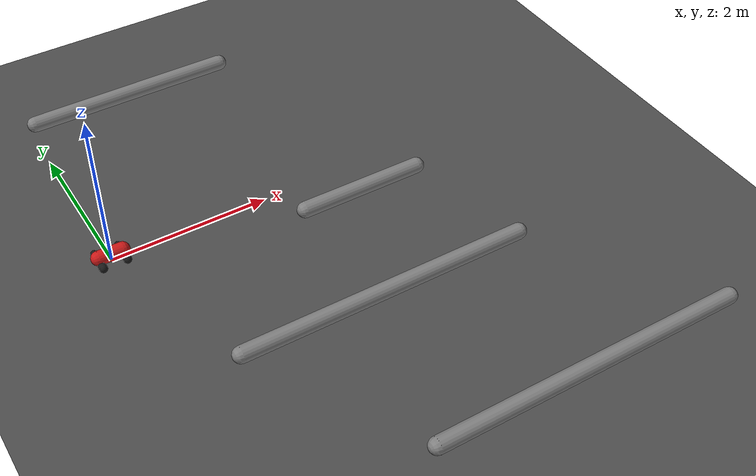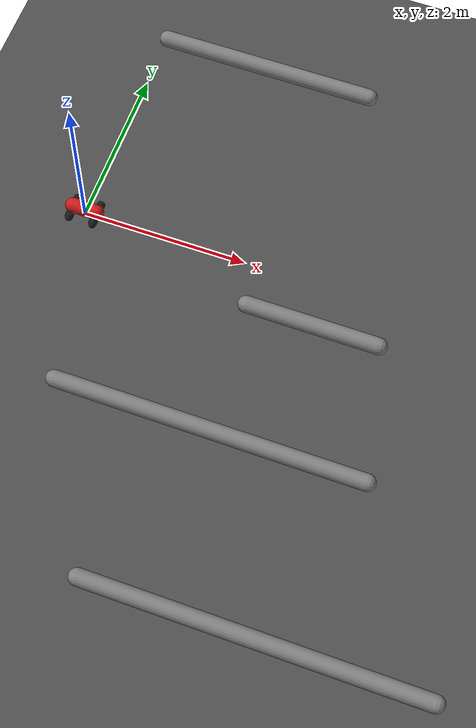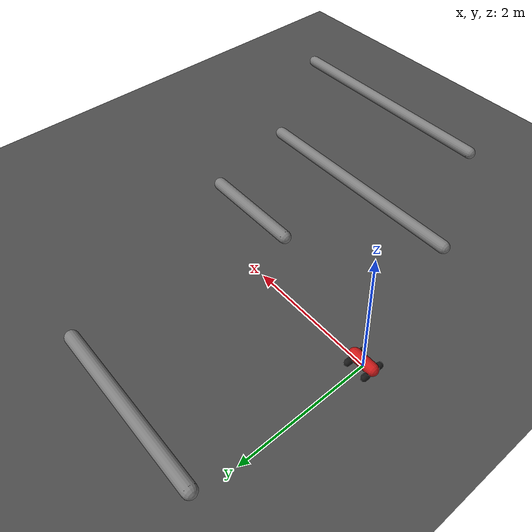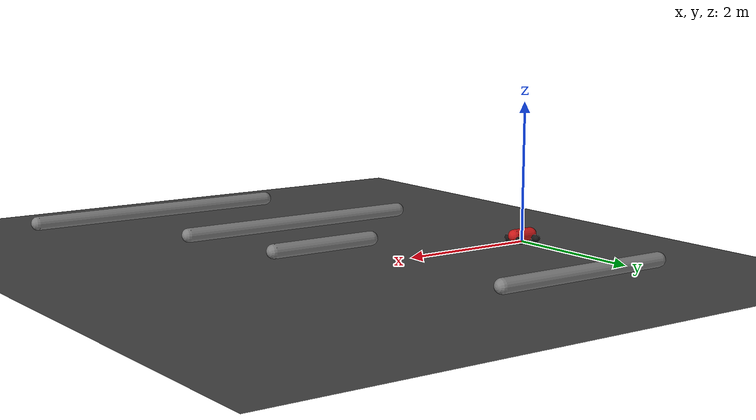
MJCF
<mujoco model="ackermann_car_scene">
  <compiler angle="radian"/>
  <option timestep="0.002" gravity="0 0 -9.81" iterations="4" cone="pyramidal"/>

  <default>
    <joint damping="0.05"/>
    <geom friction="2.0 0.1 0.1" contype="1" conaffinity="1"/>
  </default>

  <worldbody>
    <geom name="floor" type="plane" size="8.0 8.0 0.1" rgba="0.3 0.3 0.3 1"/>
    <geom name="wall_0" type="capsule" size="0.1" fromto="0.5646793996179851 -2.2043787683452045 0.2 4.183263741961067 -2.2043787683452045 0.2" rgba="0.5 0.5 0.5 1"/>
    <geom name="wall_1" type="capsule" size="0.1" fromto="0.05247292351894384 2.598510160219618 0.2 2.676200585490789 2.598510160219618 0.2" rgba="0.5 0.5 0.5 1"/>
    <geom name="wall_2" type="capsule" size="0.1" fromto="2.236451589626319 -0.6050963888545198 0.2 3.807320280931335 -0.6050963888545198 0.2" rgba="0.5 0.5 0.5 1"/>
    <geom name="wall_3" type="capsule" size="0.1" fromto="1.6812587490609485 -4.2246901526980185 0.2 5.544435487945755 -4.2246901526980185 0.2" rgba="0.5 0.5 0.5 1"/>

    <body name="chassis" pos="0 0 0.1">
      <freejoint name="chassis_free"/>
      <geom name="chassis_geom" type="capsule" size="0.09" fromto="-0.15 0 0 0.15 0 0" mass="3.0" rgba="0.8 0.1 0.1 1"/>

      <body name="wheel_fl" pos="0.1483 0.115 -0.05">
        <joint name="steer_fl" type="hinge" axis="0 0 1" range="-0.6 0.6" limited="true" damping="1.0"/>
        <geom name="knuckle_fl_geom" type="sphere" size="0.01" mass="0.05" rgba="0.2 0.2 0.2 1"/>
        <body name="wheel_fl_spin">
          <joint name="spin_fl" type="hinge" axis="0 1 0" damping="0.001"/>
          <geom name="wheel_fl_geom" type="capsule" size="0.05" fromto="0 -0.0215 0 0 0.0215 0" mass="0.1" rgba="0.1 0.1 0.1 1"/>
        </body>
      </body>
      <body name="wheel_fr" pos="0.1483 -0.115 -0.05">
        <joint name="steer_fr" type="hinge" axis="0 0 1" range="-0.6 0.6" limited="true" damping="1.0"/>
        <geom name="knuckle_fr_geom" type="sphere" size="0.01" mass="0.05" rgba="0.2 0.2 0.2 1"/>
        <body name="wheel_fr_spin">
          <joint name="spin_fr" type="hinge" axis="0 1 0" damping="0.001"/>
          <geom name="wheel_fr_geom" type="capsule" size="0.05" fromto="0 -0.0215 0 0 0.0215 0" mass="0.1" rgba="0.1 0.1 0.1 1"/>
        </body>
      </body>
      <body name="wheel_rl" pos="-0.1483 0.115 -0.05">
        <joint name="spin_rl" type="hinge" axis="0 1 0" damping="0.001"/>
        <geom name="wheel_rl_geom" type="capsule" size="0.05" fromto="0 -0.0215 0 0 0.0215 0" mass="0.1" rgba="0.1 0.1 0.1 1"/>
      </body>
      <body name="wheel_rr" pos="-0.1483 -0.115 -0.05">
        <joint name="spin_rr" type="hinge" axis="0 1 0" damping="0.001"/>
        <geom name="wheel_rr_geom" type="capsule" size="0.05" fromto="0 -0.0215 0 0 0.0215 0" mass="0.1" rgba="0.1 0.1 0.1 1"/>
      </body>
    </body>
  </worldbody>

  <equality>
    <joint joint1="steer_fl" joint2="steer_fr"/>
  </equality>

  <actuator>
    <position name="steer" joint="steer_fl" kp="80" ctrlrange="-0.6 0.6" forcerange="-20 20"/>
    <motor name="throttle_rl" joint="spin_rl" gear="0.78" ctrlrange="-1 1"/>
    <motor name="throttle_rr" joint="spin_rr" gear="0.78" ctrlrange="-1 1"/>
  </actuator>
</mujoco>
